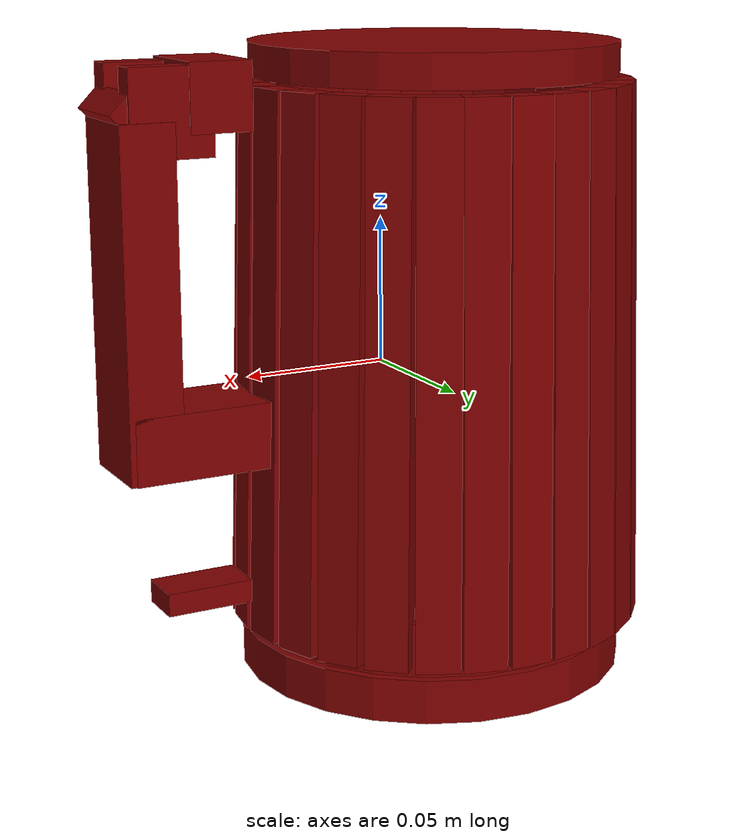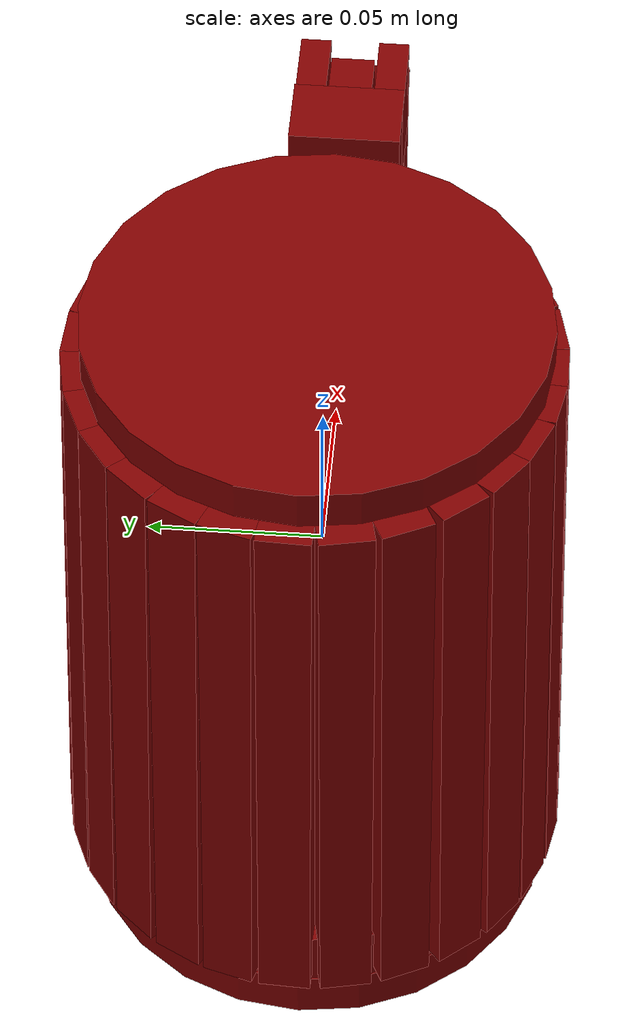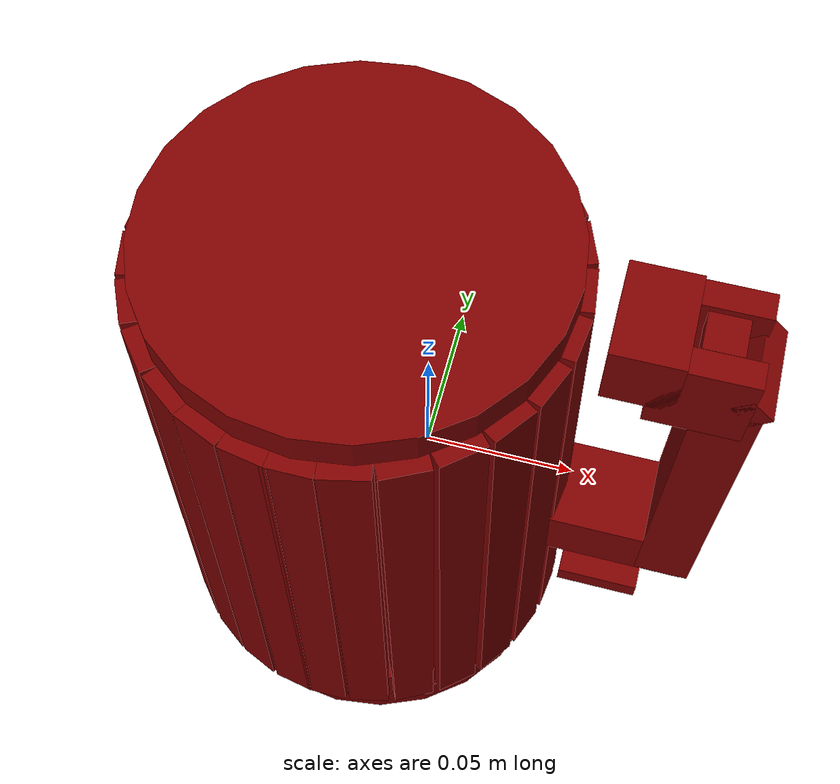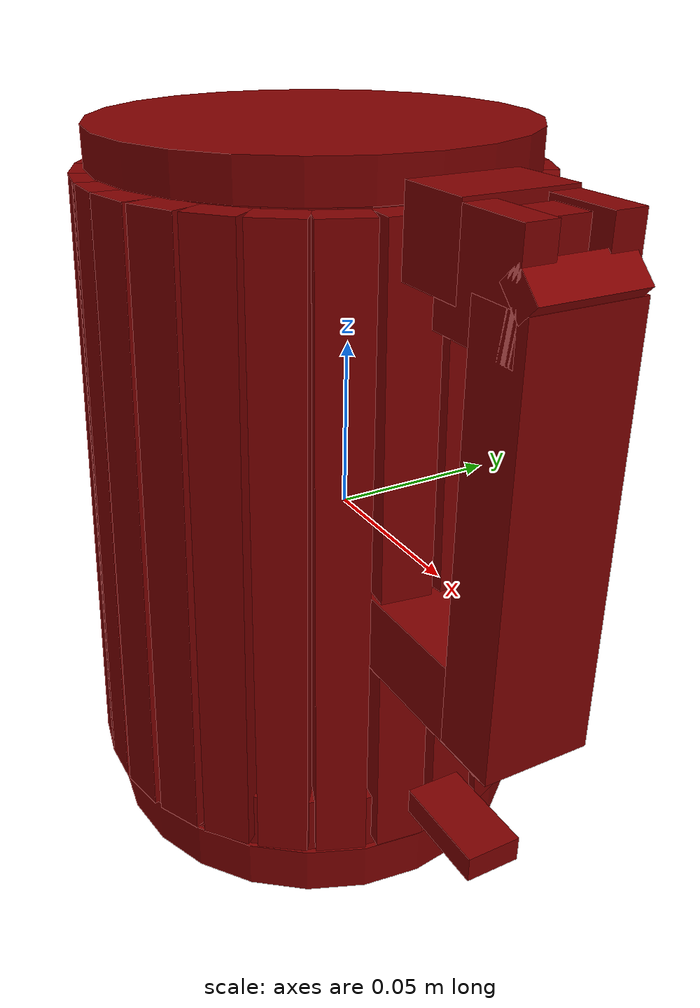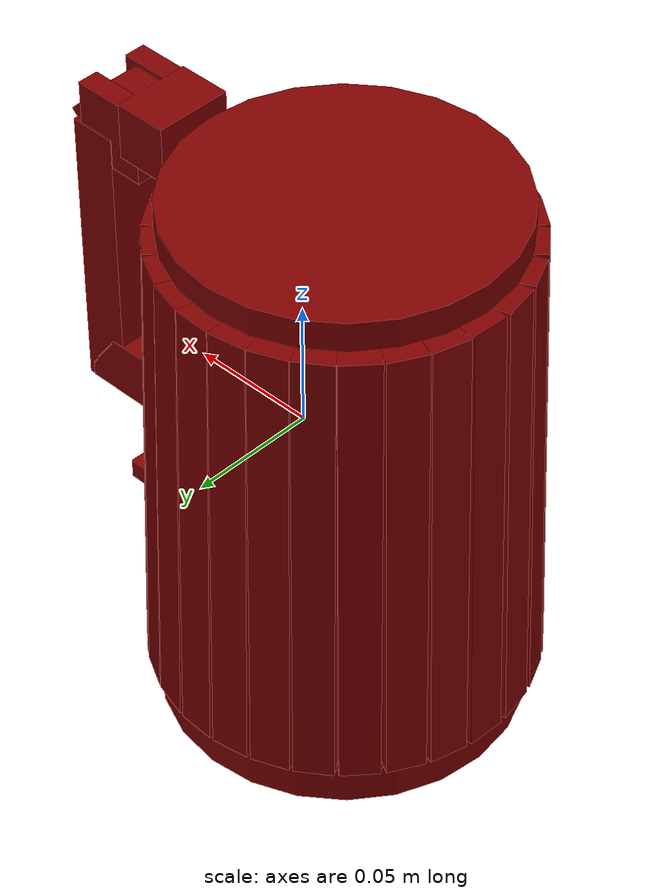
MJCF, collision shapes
<?xml version='1.0' encoding='UTF-8'?>
<mujoco model="model">
  <option timestep="0.002" gravity="0.0 0.0 -9.81"/>
  <compiler angle="radian"/>
  <asset>
    <mesh file="visuals/button_lid.obj" name="button_lid_vis"/>
    <mesh file="visuals/Body001.obj" name="Body001_vis"/>
    <mesh file="visuals/kettle_main.obj" name="kettle_main_vis"/>
    <mesh file="visuals/lid.obj" name="lid_vis"/>
    <mesh file="visuals/switch.obj" name="switch_vis"/>
    <texture file="visuals/T_BC001.png" name="Body001_material" type="2d"/>
    <material name="Body001_material" rgba="1 1 1 1.0" texture="Body001_material" shininess="0.5" specular="0.3103448502657381"/>
    <texture file="visuals/T_BC001.png" name="kettle_main_material" type="2d"/>
    <material name="kettle_main_material" rgba="1 1 1 1.0" texture="kettle_main_material" shininess="0.5" specular="0.3103448502657381"/>
    <texture file="visuals/T_BC001.png" name="button_lid_material" type="2d"/>
    <material name="button_lid_material" rgba="1 1 1 1.0" texture="button_lid_material" shininess="0.5" specular="0.3103448502657381"/>
    <texture file="visuals/T_BC001.png" name="lid_material" type="2d"/>
    <material name="lid_material" rgba="1 1 1 1.0" texture="lid_material" shininess="0.5" specular="0.3103448502657381"/>
    <texture file="visuals/T_BC001.png" name="switch_material" type="2d"/>
    <material name="switch_material" rgba="1 1 1 1.0" texture="switch_material" shininess="0.5" specular="0.3103448502657381"/>
  </asset>
  <default>
    <default class="visual">
      <geom conaffinity="0" contype="0" group="1" type="mesh"/>
    </default>
    <default class="collision">
      <geom group="0" rgba="0.5 0 0 0.5" density="1.0" solref="0.004 1" solimp="0.998 0.998 0.001"/>
    </default>
    <default class="spawn">
      <geom group="0" rgba="1 1 1 0.5" contype="0" conaffinity="0"/>
      <site group="0" rgba="1 1 1 0.5"/>
    </default>
    <default class="region">
      <geom group="1" conaffinity="0" contype="0" rgba="0 1 0 0" mass="0"/>
    </default>
  </default>
  <worldbody>
    <body>
      <body name="object">
        <geom mesh="Body001_vis" type="mesh" solimp="0.998 0.998 0.001" solref="0.001 1" friction="0.95 0.3 0.1" class="visual" material="Body001_material"/>
        <geom type="cylinder" pos="-0.01963663 -0.00000150 -0.10121969" size="0.0678660050034523 0.007532762363553047" quat="1.0 0.0 0.0 0.0" class="collision"/>
        <body name="kettle_main">
          <geom mesh="kettle_main_vis" type="mesh" solimp="0.998 0.998 0.001" solref="0.001 1" friction="0.95 0.3 0.1" class="visual" material="kettle_main_material"/>
          <geom type="box" pos="-0.02087512 -0.06376910 0.00322897" size="0.007380795199424028 0.0054064602591097355 0.09264536201953888" quat="0.9999023079872131 -0.013977143913507462 -3.1035493982550703e-18 -1.4061116286136606e-24" class="collision"/>
          <geom type="box" pos="-0.00656249 -0.06215614 0.00322897" size="0.007380795665085316 0.005406459793448448 0.09264536201953888" quat="0.9936127662658691 -0.013889258727431297 -0.0015652369474992156 0.11197458952665329" class="collision"/>
          <geom type="box" pos="0.00790842 -0.05696791 0.00322897" size="0.007380795199424028 0.005406459793448448 0.09264536201953888" quat="0.9731060862541199 -0.013602576218545437 -0.003214121563360095 0.2299330085515976" class="collision"/>
          <geom type="box" pos="0.02078675 -0.04844906 0.00322897" size="0.007380795665085316 0.005406459793448448 0.09264536201953888" quat="0.9384636878967285 -0.013118329457938671 -0.0048239147290587425 0.3450949788093567" class="collision"/>
          <geom type="box" pos="0.03134342 -0.03699463 0.00322897" size="0.007380795199424028 0.005406459793448448 0.09264536201953888" quat="0.8897600769996643 -0.01243752334266901 -0.0063772015273571014 0.4562145173549652" class="collision"/>
          <geom type="box" pos="0.03876090 -0.02352557 0.00322897" size="0.007380795199424028 0.0054064602591097355 0.09264536201953888" quat="0.8288372159004211 -0.011585910804569721 -0.007818393409252167 0.5593152046203613" class="collision"/>
          <geom type="box" pos="0.04287180 -0.00794036 0.00322897" size="0.007380795665085316 0.0054064602591097355 0.09264536201953888" quat="0.7522096037864685 -0.010514771565794945 -0.00920870155096054 0.6587756276130676" class="collision"/>
          <geom type="box" pos="0.04299569 0.00802888 0.00322897" size="0.007380795665085316 0.005406459793448448 0.09264536201953888" quat="0.6645917892456055 -0.009290005080401897 -0.010443010367453098 0.7470759153366089" class="collision"/>
          <geom type="box" pos="0.03929050 0.02324776 0.00322897" size="0.007380794733762741 0.005406459793448448 0.09264536201953888" quat="0.568663477897644 -0.007949069142341614 -0.01149665005505085 0.8224515318870544" class="collision"/>
          <geom type="box" pos="0.03199303 0.03715262 0.00322897" size="0.007380795199424028 0.005406459793448448 0.09264536201953888" quat="0.4639919400215149 -0.0064859166741371155 -0.012381174601614475 0.8857291340827942" class="collision"/>
          <geom type="box" pos="0.02153089 0.04813135 0.00321319" size="0.007380795665085316 0.0059713320806622505 0.09264536201953888" quat="0.3559047281742096 -0.004975018557161093 -0.013061768375337124 0.934417724609375" class="collision"/>
          <geom type="box" pos="0.00928302 0.05679626 0.00321562" size="0.007380795199424028 0.0058844005689024925 0.09264536201953888" quat="0.24354730546474457 -0.003404434770345688 -0.01355624571442604 0.9697883129119873" class="collision"/>
          <geom type="box" pos="-0.00363009 0.06184334 0.00321150" size="0.007380795199424028 0.006031757686287165 0.09264536201953888" quat="0.13666599988937378 -0.0019103848608210683 -0.013845977373421192 0.9905185699462891" class="collision"/>
          <geom type="box" pos="-0.01769310 0.06411692 0.00321076" size="0.007380795199424028 0.006057980004698038 0.09264536947011948" quat="0.024998819455504417 -0.00034944876097142696 -0.013972953893244267 0.999589741230011" class="collision"/>
          <geom type="box" pos="-0.03177633 0.06309588 0.00320635" size="0.007380795199424028 0.006215929519385099 0.09264536947011948" quat="0.086149200797081 -0.0012042475864291191 0.013925349339842796 -0.9961841702461243" class="collision"/>
          <geom type="box" pos="-0.04521403 0.05893726 0.00319985" size="0.007380795199424028 0.006448398344218731 0.09264536201953888" quat="0.19614286720752716 -0.002741793403401971 0.013705610297620296 -0.9804757237434387" class="collision"/>
          <geom type="box" pos="-0.05743031 0.05216316 0.00319954" size="0.007380795199424028 0.00645945779979229 0.09264536201953888" quat="0.3031933009624481 -0.0042381915263831615 0.013319101184606552 -0.9528265595436096" class="collision"/>
          <geom type="box" pos="-0.06796989 0.04266269 0.00319755" size="0.007380795199424028 0.006530726794153452 0.09264536201953888" quat="0.4082055687904358 -0.005706107243895531 0.012759349308907986 -0.9127830266952515" class="collision"/>
          <geom type="box" pos="-0.07619869 0.03071164 0.00319285" size="0.007380795665085316 0.006699009332805872 0.09264536947011948" quat="0.5104392170906067 -0.007135199382901192 0.012018784880638123 -0.8598002791404724" class="collision"/>
          <geom type="box" pos="-0.08181117 0.01760569 0.00320024" size="0.007380795199424028 0.006434462033212185 0.09264536201953888" quat="0.6042205095291138 -0.008446104824543 0.011136606335639954 -0.7966945767402649" class="collision"/>
          <geom type="box" pos="-0.08409280 0.00313092 0.00319996" size="0.007380795199424028 0.006444517057389021 0.09264536201953888" quat="0.6924059987068176 -0.009678809903562069 0.010083721950650215 -0.7213727235794067" class="collision"/>
          <geom type="box" pos="-0.08285781 -0.01223680 0.00320038" size="0.007380795199424028 0.006429573055356741 0.09264536201953888" quat="0.7751274108886719 -0.0108351344242692 0.008829537779092789 -0.6316503286361694" class="collision"/>
          <geom type="box" pos="-0.07813482 -0.02686919 0.00320585" size="0.007380795199424028 0.0062337275594472885 0.09264536201953888" quat="0.8460131287574768 -0.01182600762695074 0.007450283505022526 -0.5329788327217102" class="collision"/>
          <geom type="box" pos="-0.06967236 -0.04037807 0.00321146" size="0.007380795199424028 0.006033081561326981 0.09264536201953888" quat="0.9061471223831177 -0.012666638940572739 0.005909170489758253 -0.42273157835006714" class="collision"/>
          <geom type="box" pos="-0.05859156 -0.05070016 0.00320984" size="0.007380795665085316 0.00609113834798336 0.09264536201953888" quat="0.9499987959861755 -0.013279573060572147 0.004360465332865715 -0.3119405210018158" class="collision"/>
          <geom type="box" pos="-0.04659072 -0.05794753 0.00321729" size="0.007380795199424028 0.005824490915983915 0.09264536201953888" quat="0.9785315990447998 -0.013678422197699547 0.0028742935974150896 -0.20562231540679932" class="collision"/>
          <geom type="box" pos="-0.03276167 -0.06244633 0.00322308" size="0.007380795199424028 0.0056175231002271175 0.09264536201953888" quat="0.9955569505691528 -0.013916447758674622 0.0013016596203669906 -0.09311829507350922" class="collision"/>
          <geom class="collision" type="box" pos="0.08776807 -0.00147141 0.02992437" size="0.009237316437065601 0.015317178331315517 0.0577319972217083" quat="1.0 0.0 0.0 0.0" name="handle_main"/>
          <geom class="collision" type="box" pos="0.06298625 -0.00147141 0.09452881" size="0.010538110509514809 0.015317178331315517 0.011243682354688644" quat="1.0 0.0 0.0 0.0" name="handle_5"/>
          <geom class="collision" type="box" pos="0.06792432 -0.00147141 -0.01685714" size="0.027031192556023598 0.015317164361476898 0.011243658140301704" quat="1.0 0.0 0.0 0.0" name="handle_1"/>
          <geom type="cylinder" pos="-0.02009697 -0.00047915 -0.08354763" size="0.06749360263347626 0.009196448139846325" quat="1.0 0.0 0.0 0.0" class="collision"/>
          <geom class="collision" type="box" pos="0.07944489 -0.01258445 0.09029644" size="0.014087814837694168 0.004204140044748783 0.014462463557720184" quat="1.0 0.0 0.0 0.0" name="handle_2"/>
          <geom class="collision" type="box" pos="0.09331013 -0.00227200 0.09114254" size="0.004896302707493305 0.014516595751047134 0.0037182148080319166" quat="0.9207598567008972 1.8260609445033696e-15 0.39012986421585083 5.241738776362581e-08" name="handle_3"/>
          <geom class="collision" type="box" pos="0.07944489 0.00935461 0.09029644" size="0.014087814837694168 0.004204140044748783 0.014462459832429886" quat="1.0 0.0 0.0 0.0" name="handle_4"/>
          <body name="button_lid">
            <joint axis="0.0 0.0 -1.0" pos="0.08168490 -0.00169983 0.09894308" limited="true" name="button_lid_joint" range="0.0 0.003" type="slide" damping="1" frictionloss="1" armature=".01" stiffness="0.05" springref="-1"/>
            <geom mesh="button_lid_vis" type="mesh" solimp="0.998 0.998 0.001" solref="0.001 1" friction="0.95 0.3 0.1" class="visual" material="button_lid_material"/>
            <geom class="collision" type="box" pos="0.08183561 -0.00147141 0.09907814" size="0.005870121996849775 0.006037034559994936 0.004397301468998194" quat="1.0 0.0 0.0 0.0" name="button_lid_main"/>
          </body>
          <body name="lid">
            <joint axis="0.0 1.0 0.0" pos="0.04942624 -0.00000037 0.10557619" limited="true" name="lid_joint" range="0.0 1.5707963267948966" type="hinge" damping="1" frictionloss="1" armature=".01" stiffness="0.05"/>
            <geom mesh="lid_vis" type="mesh" solimp="0.998 0.998 0.001" solref="0.001 1" friction="0.95 0.3 0.1" class="visual" material="lid_material"/>
            <geom class="collision" type="cylinder" pos="-0.02030399 -0.00000150 0.10326352" size="0.06299818307161331 0.005698506720364094" quat="1.0 0.0 0.0 0.0" name="lid_main"/>
          </body>
          <body name="switch">
            <joint axis="0.0 0.0 -1.0" pos="0.06325139 -0.00011485 -0.07238925" limited="true" name="switch_joint" range="0 0.002" type="slide" damping="1" frictionloss="1" armature=".01" stiffness="0.05" springref="-1"/>
            <geom mesh="switch_vis" type="mesh" solimp="0.998 0.998 0.001" solref="0.001 1" friction="0.95 0.3 0.1" class="visual" material="switch_material"/>
            <geom class="collision" type="box" pos="0.06869783 -0.00007649 -0.07203325" size="0.014857428148388863 0.008279123343527317 0.003903614357113838" quat="1.0 0.0 0.0 0.0" name="switch_main"/>
          </body>
        </body>
        <geom class="region" name="reg_main" type="box" pos="1.2500000000359446e-07 -2.1999999999522402e-07 5.000000004307115e-09" size="0.098138345 0.06866772 0.11040140500000001"/>
      </body>
    </body>
  </worldbody>
  <actuator>
    <motor name="button_lid_joint_actuator" joint="button_lid_joint" gear="0.5"/>
    <motor name="lid_joint_actuator" joint="lid_joint" gear="0.5"/>
    <motor name="switch_joint_actuator" joint="switch_joint" gear="0.5"/>
  </actuator>
</mujoco>
